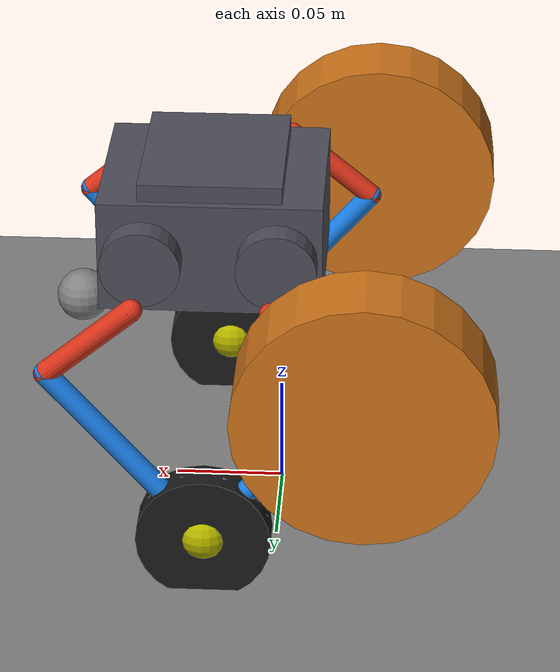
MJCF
<mujoco model="wheelleg5bar">
  <compiler angle="radian"/>

  <option timestep="0.0005" density="1.225" viscosity="1.8e-05" integrator="implicitfast"/>

  <size nkey="2"/>

  <visual>
    <quality shadowsize="2048" numslices="16"/>
    <headlight diffuse="1 1 1"/>
  </visual>

  <asset>
    <texture type="skybox" colorspace="sRGB" name="desert" file="../asset/desert.png" gridsize="3 4" gridlayout=".U..LFRB.D.."/>
    <texture type="2d" colorspace="auto" name="plane" builtin="checker" mark="cross" rgb1="0.1 0.1 0.1" rgb2="0.9 0.9 0.9" markrgb="0.8 0.8 0.8" width="512" height="512"/>
    <material name="plane" texture="plane" texuniform="true" reflectance="0.3"/>
    <material name="chassis" rgba="0.3 0.3 0.35 1"/>
    <material name="active" rgba="0.85 0.2 0.1 1"/>
    <material name="coupler" rgba="0.1 0.5 0.9 1"/>
    <material name="wheel" rgba="0.1 0.1 0.1 1"/>
  </asset>

  <worldbody>
    <geom name="floor" size="5 5 0.05" type="plane" friction="0.8 0.02 0.001" material="plane"/>
    <camera name="demo" quat="0.812163 0.58343 0 0" pos="0 -0.9 0.3" mode="trackcom"/>
    <light pos="30 30 30" dir="0 -0.894427 -0.447214" ambient="0.05 0.05 0.05" diffuse="0.6 0.6 0.6" specular="0.4 0.4 0.4" type="directional"/>
    <body name="chassis" pos="0 0 0.137">
      <inertial pos="0.03 0 0.00120725" quat="0 0.707107 0 0.707107" mass="3.0256" diaginertia="0.00446863 0.00341568 0.00272178"/>
      <joint type="free"/>
      <geom name="chassis_box" size="0.05 0.042 0.026" pos="0.03 0 0" type="box" contype="0" conaffinity="0" mass="0.62" material="chassis"/>
      <geom name="chassis_lid" size="0.032 0.038 0.004" pos="0.03 0 0.03" type="box" contype="0" conaffinity="0" mass="0.04" material="chassis"/>
      <geom name="motor_alphaL" size="0.018 0.006" pos="0 -0.048 0" quat="0.707105 0.707108 0 0" type="cylinder" contype="0" conaffinity="0" rgba="0.3 0.3 0.35 1" mass="0.005"/>
      <geom name="motor_betaL" size="0.018 0.006" pos="0.06 -0.048 0" quat="0.707105 0.707108 0 0" type="cylinder" contype="0" conaffinity="0" rgba="0.3 0.3 0.35 1" mass="0.005"/>
      <geom name="motor_alphaR" size="0.018 0.006" pos="0 0.048 0" quat="0.707105 0.707108 0 0" type="cylinder" contype="0" conaffinity="0" rgba="0.3 0.3 0.35 1" mass="0.005"/>
      <geom name="motor_betaR" size="0.018 0.006" pos="0.06 0.048 0" quat="0.707105 0.707108 0 0" type="cylinder" contype="0" conaffinity="0" rgba="0.3 0.3 0.35 1" mass="0.005"/>
      <geom name="caster_front" size="0.012" pos="0.092 0 -0.0418625" friction="0.8 0.05 0.001" solref="0.01" solimp="0.8 0.9" mass="0.005"/>
      <geom name="caster_back" size="0.012" pos="-0.032 0 -0.0418625" friction="0.8 0.05 0.001" solref="0.01" solimp="0.8 0.9" mass="0.005"/>
      <site name="body_imu" size="0.02" pos="0.03 0 0" rgba="1 0 1 1"/>
      <body name="legL" pos="0 -0.09 0">
        <joint name="alphaL" range="-1.5 1.5" armature="0.0010432" damping="0.01" axis="0 1 0" limited="true"/>
        <geom name="thighA_L" size="0.005 0.0249865" pos="-0.01915 0 -0.01605" quat="0.906186 0 0.422879 0" type="capsule" contype="0" conaffinity="0" mass="0.016" material="active"/>
        <body name="kneeA_L" pos="-0.0383 0 -0.0321">
          <joint name="passA_L" range="-2.5 2.5" armature="1e-05" damping="0.01" axis="0 1 0" limited="true"/>
          <geom name="shankA_L" size="0.005 0.0525189" pos="0.03415 0 -0.0399" quat="0.93801 0 -0.346607 0" type="capsule" contype="0" conaffinity="0" mass="0.016" material="coupler"/>
          <body name="wheelL" pos="0.0683 0 -0.0798">
            <inertial pos="0 0 0" mass="0.0755145" diaginertia="1.86369e-05 3.32125e-05 1.86369e-05"/>
            <joint name="wheel1" damping="0.005" axis="0 1 0"/>
            <geom name="wheel_collide_L" size="0.0301625 0.00762 0.0301625" type="ellipsoid" friction="0.8 0.02 0.001" solref="0.003 2" mass="0.1"/>
            <geom name="wheel_geom_L" size="0.0301625 0.00762" quat="0.707105 0.707108 0 0" type="cylinder" contype="0" conaffinity="0" mass="0" material="wheel"/>
            <site name="wheel_contact_L" size="0.01" rgba="0 1 0 0.5"/>
            <site name="wheel_axle_L" size="0.012" rgba="0.9 0.9 0 0.8"/>
          </body>
          <body name="wheel_drive_L" pos="-0.00285759 -0.0281 0.00333874">
            <inertial pos="-0.00285759 -0.0281 0.00333874" mass="0.386" diaginertia="0.000352937 0.000621569 0.000352937"/>
            <geom name="wheel_drive_case_L" size="0.05675 0.0181" quat="0.707107 0.707107 0 0" type="cylinder" rgba="0.8 0.45 0.1 1" mass="0"/>
            <body name="wheel_drive_rotor_L">
              <inertial pos="0 0 0" mass="0.324" diaginertia="0.000470382 0.00087 0.000470382"/>
              <joint name="wheel_drive_spin_L" axis="0 1 0"/>
            </body>
          </body>
          <body name="wheel_drive_support_L" pos="0.0327212 -0.0281 -0.0382306">
            <inertial pos="0.0327212 -0.0281 -0.0382306" mass="0.1" diaginertia="6.51004e-05 9.97954e-05 4.9695e-05"/>
          </body>
        </body>
      </body>
      <body name="legL_D" pos="0.06 -0.09 0">
        <joint name="betaL" range="-1.5 1.5" armature="0.0010432" damping="0.01" axis="0 1 0" limited="true"/>
        <geom name="thighB_L" size="0.005 0.0249865" pos="0.01915 0 -0.01605" quat="0.906186 0 -0.422879 0" type="capsule" contype="0" conaffinity="0" mass="0.016" material="active"/>
        <body name="kneeB_L" pos="0.0383 0 -0.0321">
          <joint name="passC_L" range="-2.5 2.5" armature="1e-05" damping="0.01" axis="0 1 0" limited="true"/>
          <geom name="shankB_L" size="0.005 0.0525189" pos="-0.03415 0 -0.0399" quat="0.93801 0 0.346607 0" type="capsule" contype="0" conaffinity="0" mass="0.016" material="coupler"/>
          <site name="couplerB_L_end" size="0.01" pos="-0.0683 0 -0.0798" rgba="0.9 0.9 0 0.8"/>
        </body>
      </body>
      <body name="legR" pos="0 0.09 0">
        <joint name="alphaR" range="-1.5 1.5" armature="0.0010432" damping="0.01" axis="0 1 0" limited="true"/>
        <geom name="thighA_R" size="0.005 0.0249865" pos="-0.01915 0 -0.01605" quat="0.906186 0 0.422879 0" type="capsule" contype="0" conaffinity="0" mass="0.016" material="active"/>
        <body name="kneeA_R" pos="-0.0383 0 -0.0321">
          <joint name="passA_R" range="-2.5 2.5" armature="1e-05" damping="0.01" axis="0 1 0" limited="true"/>
          <geom name="shankA_R" size="0.005 0.0525189" pos="0.03415 0 -0.0399" quat="0.93801 0 -0.346607 0" type="capsule" contype="0" conaffinity="0" mass="0.016" material="coupler"/>
          <body name="wheelR" pos="0.0683 0 -0.0798">
            <inertial pos="0 0 0" mass="0.0755145" diaginertia="1.86369e-05 3.32125e-05 1.86369e-05"/>
            <joint name="wheel2" damping="0.005" axis="0 1 0"/>
            <geom name="wheel_collide_R" size="0.0301625 0.00762 0.0301625" type="ellipsoid" friction="0.8 0.02 0.001" solref="0.003 2" mass="0.1"/>
            <geom name="wheel_geom_R" size="0.0301625 0.00762" quat="0.707105 0.707108 0 0" type="cylinder" contype="0" conaffinity="0" mass="0" material="wheel"/>
            <site name="wheel_contact_R" size="0.01" rgba="0 1 0 0.5"/>
            <site name="wheel_axle_R" size="0.012" rgba="0.9 0.9 0 0.8"/>
          </body>
          <body name="wheel_drive_R" pos="-0.00285759 0.0281 0.00333874">
            <inertial pos="-0.00285759 0.0281 0.00333874" mass="0.386" diaginertia="0.000352937 0.000621569 0.000352937"/>
            <geom name="wheel_drive_case_R" size="0.05675 0.0181" quat="0.707107 0.707107 0 0" type="cylinder" rgba="0.8 0.45 0.1 1" mass="0"/>
            <body name="wheel_drive_rotor_R">
              <inertial pos="0 0 0" mass="0.324" diaginertia="0.000470382 0.00087 0.000470382"/>
              <joint name="wheel_drive_spin_R" axis="0 1 0"/>
            </body>
          </body>
          <body name="wheel_drive_support_R" pos="0.0327212 0.0281 -0.0382306">
            <inertial pos="0.0327212 0.0281 -0.0382306" mass="0.1" diaginertia="6.51004e-05 9.97954e-05 4.9695e-05"/>
          </body>
        </body>
      </body>
      <body name="legR_D" pos="0.06 0.09 0">
        <joint name="betaR" range="-1.5 1.5" armature="0.0010432" damping="0.01" axis="0 1 0" limited="true"/>
        <geom name="thighB_R" size="0.005 0.0249865" pos="0.01915 0 -0.01605" quat="0.906186 0 -0.422879 0" type="capsule" contype="0" conaffinity="0" mass="0.016" material="active"/>
        <body name="kneeB_R" pos="0.0383 0 -0.0321">
          <joint name="passC_R" range="-2.5 2.5" armature="1e-05" damping="0.01" axis="0 1 0" limited="true"/>
          <geom name="shankB_R" size="0.005 0.0525189" pos="-0.03415 0 -0.0399" quat="0.93801 0 0.346607 0" type="capsule" contype="0" conaffinity="0" mass="0.016" material="coupler"/>
          <site name="couplerB_R_end" size="0.01" pos="-0.0683 0 -0.0798" rgba="0.9 0.9 0 0.8"/>
        </body>
      </body>
    </body>
  </worldbody>

  <equality>
    <connect name="l_loop" site1="couplerB_L_end" site2="wheel_axle_L" solref="0.002" solimp="0.95 0.99"/>
    <connect name="r_loop" site1="couplerB_R_end" site2="wheel_axle_R" solref="0.002" solimp="0.95 0.99"/>
    <joint name="wheel_drive_belt_L" joint1="wheel_drive_spin_L" joint2="wheel1" polycoef="0 0.631579 0 0 0" solref="0.002"/>
    <joint name="wheel_drive_belt_R" joint1="wheel_drive_spin_R" joint2="wheel2" polycoef="0 0.631579 0 0 0" solref="0.002"/>
  </equality>

  <actuator>
    <general name="motor_alphaL" joint="alphaL" ctrlrange="-18 18" ctrllimited="true"/>
    <general name="motor_betaL" joint="betaL" ctrlrange="-18 18" ctrllimited="true"/>
    <general name="motor_alphaR" joint="alphaR" ctrlrange="-18 18" ctrllimited="true"/>
    <general name="motor_betaR" joint="betaR" ctrlrange="-18 18" ctrllimited="true"/>
    <general name="motor_wheelL" joint="wheel_drive_spin_L" ctrlrange="-12 12" ctrllimited="true"/>
    <general name="motor_wheelR" joint="wheel_drive_spin_R" ctrlrange="-12 12" ctrllimited="true"/>
  </actuator>

  <sensor>
    <framequat objtype="site" objname="body_imu" name="body_orientation"/>
    <gyro site="body_imu" name="body_gyro"/>
    <accelerometer site="body_imu" name="body_accel"/>
    <jointpos joint="alphaL" name="alpha_L"/>
    <jointpos joint="betaL" name="beta_L"/>
    <jointpos joint="alphaR" name="alpha_R"/>
    <jointpos joint="betaR" name="beta_R"/>
    <jointpos joint="passA_L" name="passA_L_s"/>
    <jointpos joint="passC_L" name="passC_L_s"/>
    <jointpos joint="passA_R" name="passA_R_s"/>
    <jointpos joint="passC_R" name="passC_R_s"/>
    <jointpos joint="wheel1" name="wheel_joint_angle1"/>
    <jointpos joint="wheel2" name="wheel_joint_angle2"/>
    <jointvel joint="wheel1" name="wheel_joint_speed1"/>
    <jointvel joint="wheel2" name="wheel_joint_speed2"/>
    <force site="wheel_contact_L" name="wheel1_ground_force"/>
    <force site="wheel_contact_R" name="wheel2_ground_force"/>
  </sensor>

  <keyframe>
    <key name="stand" qpos="0 0 0.142062 1 0 0 0 0 0 0 0 0 0 0 0 0 0 0 0"/>
    <key name="crouch" qpos="0 0 0.125 1 0 0 0 0.177527 -0.242895 0 -0.177527 0.242895 0.177527 -0.242895 0 -0.177527 0.242895 0 0"/>
  </keyframe>
</mujoco>
